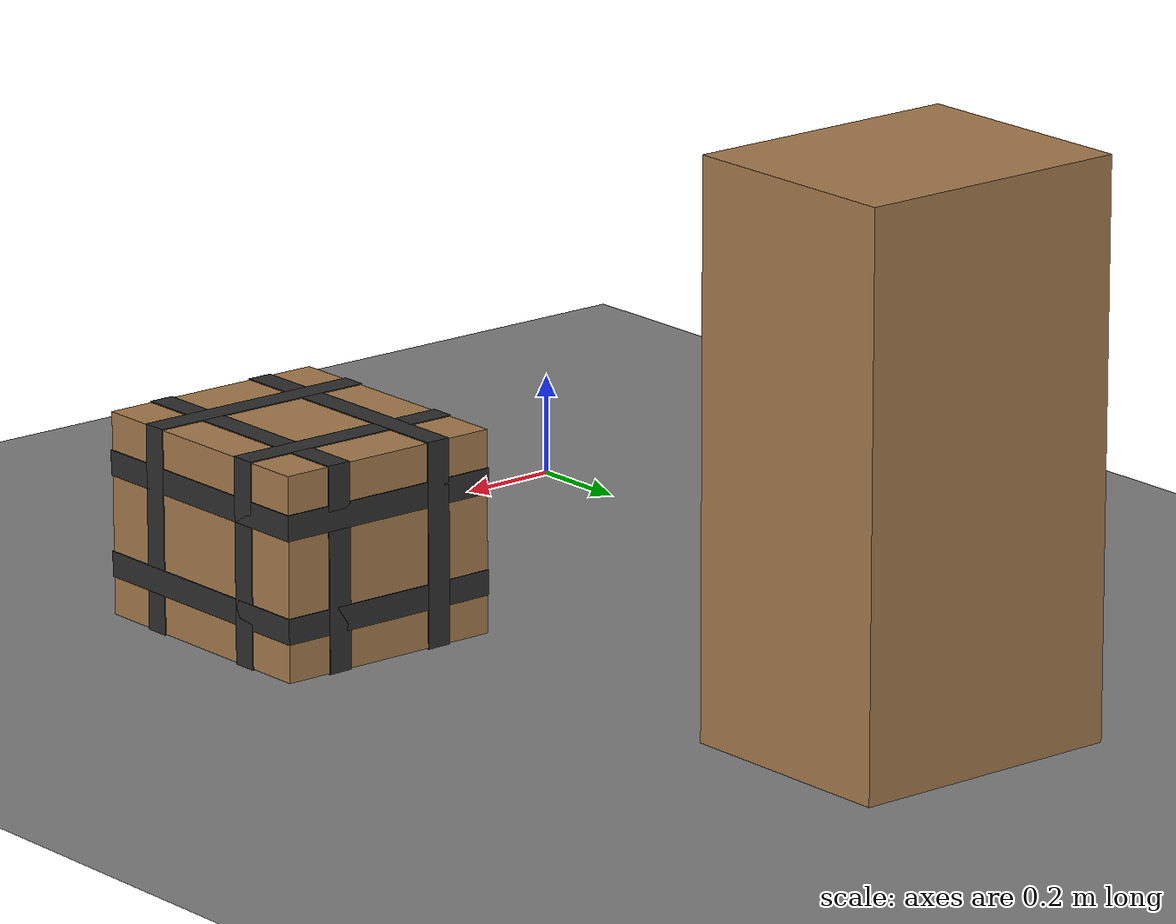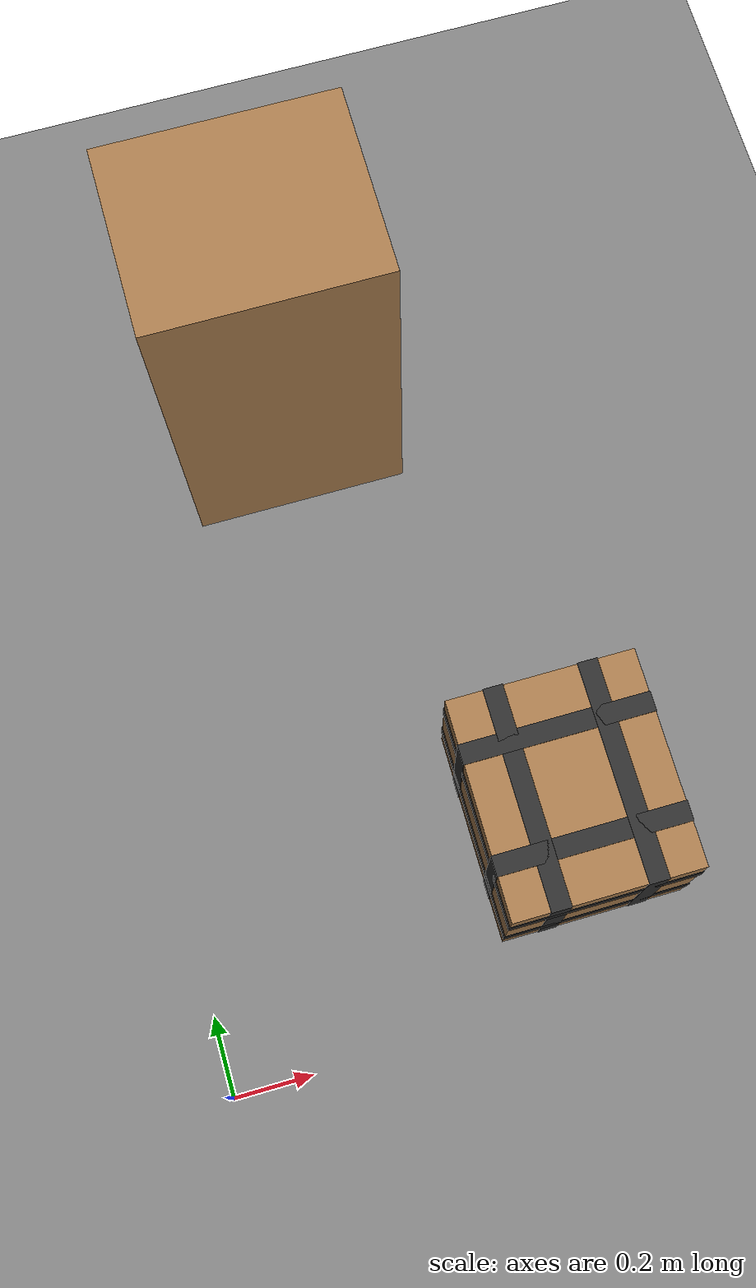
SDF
<sdf version="1.9">
 <world name="ecps295_lowbox_s27_monitor">
  <model name="ground_plane">
   <static>true</static>
   <link name="link">
    <collision name="collision">
     <geometry><plane><normal>0 0 1</normal><size>50 50</size></plane></geometry>
    </collision>
    <visual name="visual">
     <geometry><plane><normal>0 0 1</normal><size>50 50</size></plane></geometry>
     <material><ambient>0.5 0.5 0.5 1</ambient><diffuse>0.5 0.5 0.5 1</diffuse></material>
    </visual>
   </link>
  </model>
  <model name="lb1">
   <static>true</static>
   <pose>0.56 1.69 0.55 0 0 0</pose>
   <link name="link">
    <collision name="c"><geometry><box><size>0.56 0.46 1.1</size></box></geometry></collision>
    <visual name="v">
     <geometry><box><size>0.56 0.46 1.1</size></box></geometry>
     <material><ambient>0.65 0.48 0.30 1</ambient><diffuse>0.65 0.48 0.30 1</diffuse></material>
    </visual>
   </link>
  </model>
  <model name="lb2">
   <static>true</static>
   <pose>0.97 0.45 0.2 0 0 0</pose>
   <link name="link">
    <collision name="c"><geometry><box><size>0.47 0.54 0.4</size></box></geometry></collision>
    <visual name="v">
     <geometry><box><size>0.47 0.54 0.4</size></box></geometry>
     <material><ambient>0.65 0.48 0.30 1</ambient><diffuse>0.65 0.48 0.30 1</diffuse></material>
    </visual>
    <visual name="tape_ring0">
     <pose>0.000 0.000 -0.100 0 0 0</pose>
     <geometry><box><size>0.474 0.544 0.050</size></box></geometry>
     <material><ambient>0.18 0.18 0.18 1</ambient><diffuse>0.18 0.18 0.18 1</diffuse></material>
    </visual>
    <visual name="tape_bx0">
     <pose>-0.117 0.000 0.000 0 0 0</pose>
     <geometry><box><size>0.050 0.544 0.404</size></box></geometry>
     <material><ambient>0.18 0.18 0.18 1</ambient><diffuse>0.18 0.18 0.18 1</diffuse></material>
    </visual>
    <visual name="tape_by0">
     <pose>0.000 -0.135 0.000 0 0 0</pose>
     <geometry><box><size>0.474 0.050 0.404</size></box></geometry>
     <material><ambient>0.18 0.18 0.18 1</ambient><diffuse>0.18 0.18 0.18 1</diffuse></material>
    </visual>
    <visual name="tape_ring1">
     <pose>0.000 0.000 0.100 0 0 0</pose>
     <geometry><box><size>0.474 0.544 0.050</size></box></geometry>
     <material><ambient>0.18 0.18 0.18 1</ambient><diffuse>0.18 0.18 0.18 1</diffuse></material>
    </visual>
    <visual name="tape_bx1">
     <pose>0.117 0.000 0.000 0 0 0</pose>
     <geometry><box><size>0.050 0.544 0.404</size></box></geometry>
     <material><ambient>0.18 0.18 0.18 1</ambient><diffuse>0.18 0.18 0.18 1</diffuse></material>
    </visual>
    <visual name="tape_by1">
     <pose>0.000 0.135 0.000 0 0 0</pose>
     <geometry><box><size>0.474 0.050 0.404</size></box></geometry>
     <material><ambient>0.18 0.18 0.18 1</ambient><diffuse>0.18 0.18 0.18 1</diffuse></material>
    </visual>
   </link>
  </model>
 </world>
</sdf>
